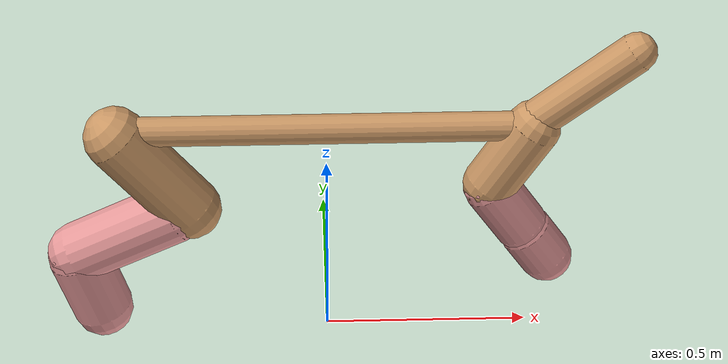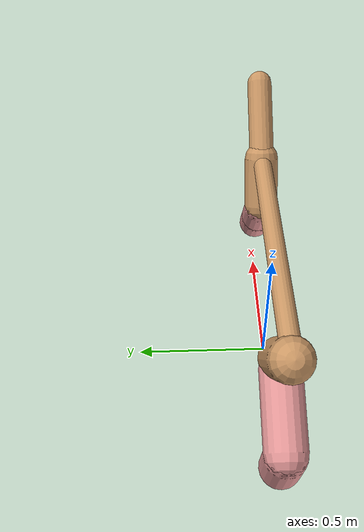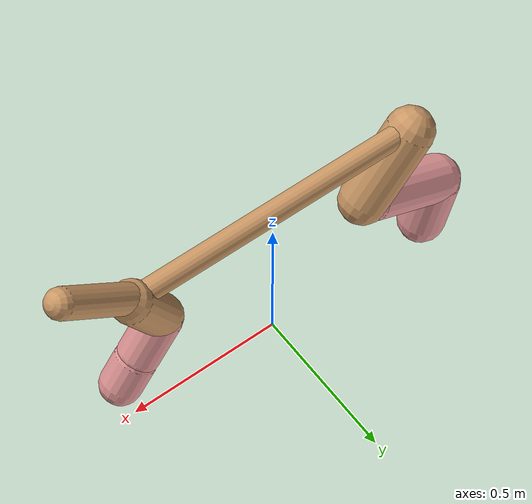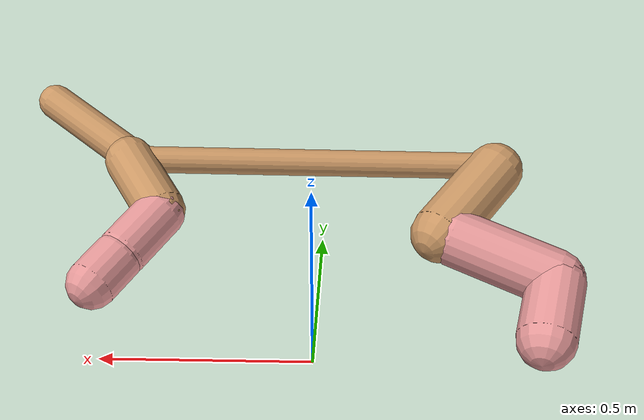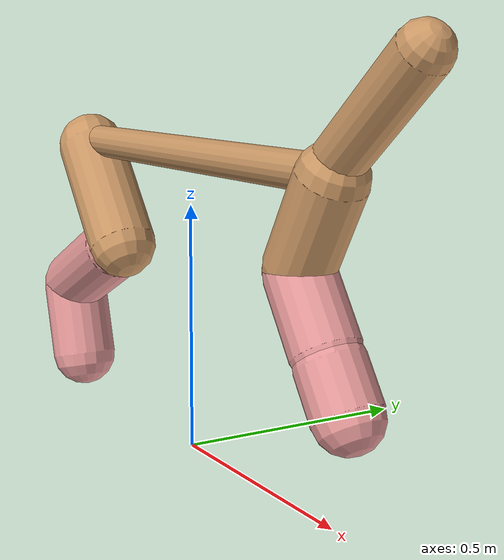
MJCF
<mujoco model="cheetah">
  <compiler angle="radian" coordinate="local" inertiafromgeom="true" settotalmass="14" />
  <default>
    <joint armature=".1" damping=".01" limited="true" solimplimit="0 .8 .03" solreflimit=".02 1" stiffness="8" />
    <geom conaffinity="0" condim="3" contype="1" friction="0.8 .1 .1" rgba="0.8 0.6 .4 1" solimp="0.0 0.8 0.01" solref="0.02 1" />
    <motor ctrllimited="true" ctrlrange="-1 1" />
  </default>
  <size nstack="300000" nuser_geom="1" />
  <option gravity="0 0 -9.81" timestep="0.01" />
  <worldbody>
    <body name="torso" pos="0.0 0.0 0.6014555362641438">
      <joint armature="0" axis="1 0 0" damping="0" limited="false" name="ignorex" pos="0 0 0" stiffness="0" type="slide" />
      <joint armature="0" axis="0 0 1" damping="0" limited="false" name="ignorez" pos="0 0 0" stiffness="0" type="slide" />
      <joint armature="0" axis="0 1 0" damping="0" limited="false" name="ignorey" pos="0 0 0" stiffness="0" type="hinge" />
      <geom fromto="-0.5 0.0 0.0 0.48437806004782535 0.0 0.0" name="torso" size="0.03499416691853637" type="capsule" />
      <geom axisangle="0 1 0 .87" name="head" pos="0.5843780600478253 0.0 0.1" size="0.047086634865872876 0.15" type="capsule" />

      <body name="bthigh" pos="-.5 0 0">
        <joint axis="0 1 0" damping="6" name="bthigh" pos="0 0 0" range="-.52 1.05" stiffness="240" type="hinge" />
        <geom axisangle="0 1 0 -3.8" name="bthigh" pos="0.09261684330976484 0.0 -0.1204018963026943" size="0.07481899823696002 0.13289072267652613" type="capsule" />
        <body name="bshin" pos="0.14523368661952968 0.0 -0.23080379260538858">
          <joint axis="0 1 0" damping="4.5" name="bshin" pos="0 0 0" range="-.785 .785" stiffness="180" type="hinge" />
          <geom axisangle="0 1 0 -2.03" name="bshin" pos="-0.12879565492950998 0.0 -0.06439782746475499" rgba="0.9 0.6 0.6 1" size="0.07481899823696002 0.1374731613895098" type="capsule" />
          <body name="bfoot" pos="-0.25759130985901996 0.0 -0.12879565492950998">
            <joint axis="0 1 0" damping="3" name="bfoot" pos="0 0 0" range="-.4 .785" stiffness="120" type="hinge" />
            <geom axisangle="0 1 0 -.27" name="bfoot" pos="0.027680517705779242 0.0 -0.08950034058201956" rgba="0.9 0.6 0.6 1" size="0.07481899823696002 0.08614984780409281" type="capsule" />
            <inertial mass="10" />
          </body>
        </body>
      </body>
      <body name="fthigh" pos="0.48437806004782535 0.0 0.0">
        <joint axis="0 1 0" damping="4.5" name="fthigh" pos="0 0 0" range="-1.5 0.8" stiffness="180" type="hinge" />
        <geom axisangle="0 1 0 .52" name="fthigh" pos="-0.04989554608158897 0.0 -0.0855352218541525" size="0.06500098774476142 0.0931" type="capsule" />
        <body name="fshin" pos="-0.09979109216317794 0.0 -0.171070443708305">
          <joint axis="0 1 0" damping="3" name="fshin" pos="0 0 0" range="-1.2 1.1" stiffness="120" type="hinge" />
          <geom axisangle="0 1 0 -.6" name="fshin" pos="0.046381400387749405 0.0 -0.06422040053688378" rgba="0.9 0.6 0.6 1" size="0.06500098774476142 0.07419999999999999" type="capsule" />
          <body name="ffoot" pos="0.09276280077549881 0.0 -0.12844080107376757">
            <joint axis="0 1 0" damping="1.5" name="ffoot" pos="0 0 0" range="-3.1 -0.3" stiffness="60" type="hinge" />
            <geom axisangle="0 1 0 -.6" name="ffoot" pos="0.033644090582416526 0.0 -0.05233525201709238" rgba="0.9 0.6 0.6 1" size="0.06500098774476142 0.049" type="capsule" />
            <inertial mass="10" />
          </body>
        </body>
      </body>
    </body>
  </worldbody>
  <actuator>
    <motor gear="120" joint="bthigh" name="bthigh" />
    <motor gear="90" joint="bshin" name="bshin" />
    <motor gear="60" joint="bfoot" name="bfoot" />
    <motor gear="120" joint="fthigh" name="fthigh" />
    <motor gear="60" joint="fshin" name="fshin" />
    <motor gear="30" joint="ffoot" name="ffoot" />
  </actuator>
</mujoco>
